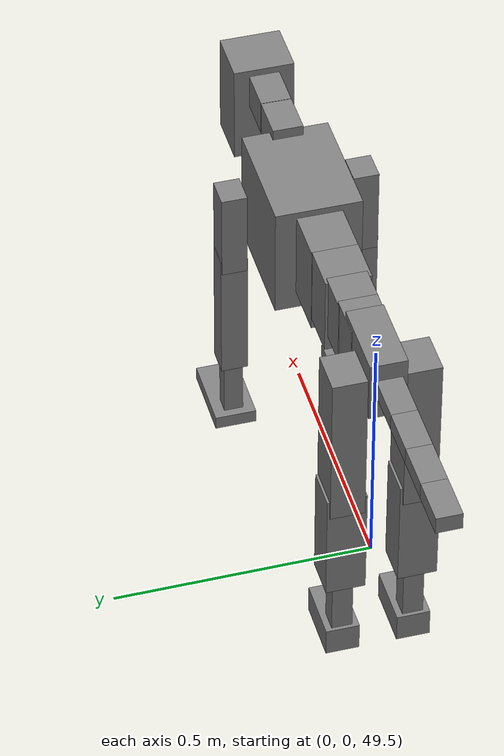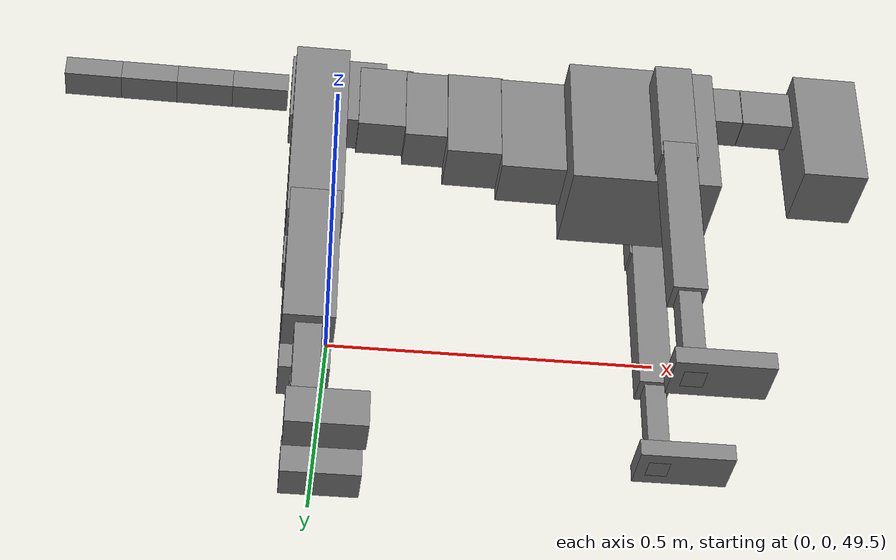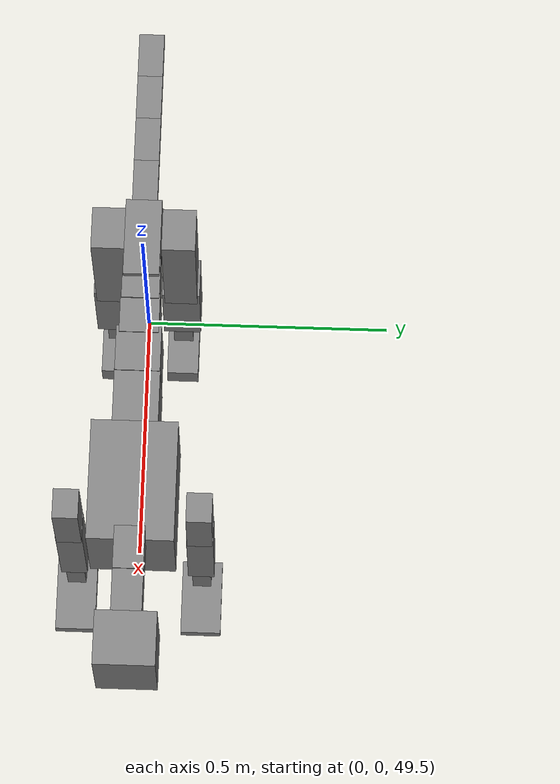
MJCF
<mujoco model="dog">

    <default>
        <joint armature="0.02" stiffness="1" damping="0.2" limited="true"/>
        <geom condim="3" friction="1 0.05 0.05" margin="0.01"/>
        <motor ctrllimited="true" ctrlrange="-1.0 1.0" forcelimited="true" gear="50"/>
    </default>

    <compiler inertiafromgeom="true" angle="radian"/>

    <option timestep="0.016" iterations="50" tolerance="1e-10" solver="Newton" jacobian="dense" cone="pyramidal"/>

    <size nconmax="20000" njmax="60000" nstack="5000000"/>
    <visual>
        <map force="0.1" zfar="30"/>
        <rgba haze="0.15 0.25 0.35 1"/>
        <quality shadowsize="2048"/>
        <global offwidth="800" offheight="800"/>
    </visual>

    <asset>
        <texture type="skybox" builtin="gradient" rgb1="0.3 0.5 0.7" rgb2="0 0 0" width="512" height="512"/>
        <texture name="texplane" type="2d" builtin="checker" rgb1=".2 .3 .4" rgb2=".1 0.15 0.2" width="512" height="512"
                 mark="cross" markrgb=".8 .8 .8"/>
        <texture name="texgeom" type="cube" builtin="flat" mark="cross" width="127" height="1278" rgb1="0.8 0.6 0.4"
                 rgb2="0.8 0.6 0.4" markrgb="1 1 1" random="0.01"/>

        <material name="matplane" reflectance="0.3" texture="texplane" texrepeat="1 1" texuniform="true"/>
        <material name="matgeom" texture="texgeom" texuniform="true" rgba="0.8 0.6 .4 1"/>
    </asset>

    <worldbody>
        <geom name="floor" pos="0 0 0" size="0 0 .25" type="plane" material="matplane" condim="3"/>

        <light directional="false" diffuse=".2 .2 .2" specular="0 0 0" pos="0 0 5" dir="0 0 -1" castshadow="false"/>
        <light mode="targetbodycom" target="torso" directional="false" diffuse=".8 .8 .8" specular="0.3 0.3 0.3"
               pos="0 0 4.0" dir="0 0 -1"/>

        <body name="root" pos="0 0 50">
            <freejoint name="root_1"/>
            <geom type="box" pos="0 0 -0.02" size="0.0774  0.0358  0.063" density="2030"/>

            <body name="spine1" pos="0.054 0 0">
                <joint name="spine1_y" axis="0 1 0" range="0 0.7" limited="true"/>
                <geom type="box" pos="0.02375 0 -0.03" size="0.04375  0.0375  0.05985" density="2030"/>

                <body name="spine2" pos="0.0612 0 0">
                    <joint name="spine2_y" axis="0 1 0" range="-0.15 0.15" limited="true"/>
                    <geom type="box" pos="0.03555  0  -0.04" size="0.04055  0.039  0.06615" density="2030"/>

                    <body name="spine3" pos="0.0730 0 0">
                        <joint name="spine3_y" axis="0 1 0" range="-0.15 0.15" limited="true"/>
                        <geom type="box" pos="0.03555  0  -0.057" size="0.04555  0.0445  0.081" density="2030"/>

                        <body name="spine4" pos="0.0780 0 0">
                            <joint name="spine4_y" axis="0 1 0" range="-0.15 0.15" limited="true"/>
                            <geom type="box" pos="0.05265  0  -0.07" size="0.05265  0.045  0.09135" density="2030"/>

                            <body name="torso" pos="0.1082 0 0">
                                <joint name="torso_y" axis="0 1 0" range="-0.15 0.15" limited="true"/>
                                <geom type="box" pos="0.11925  0  -0.085" size="0.11925  0.085  0.11745"
                                      density="2030"/>

                                <body name="neck1" pos="0.2160  0   0.0180">
                                    <joint name="neck1_y" axis="0 1 0" range="-1.2  -1" limited="true"/>
                                    <geom type="box" pos="0.0423  0  0" size="0.0423  0.03  0.036" density="2325"/>

                                    <body name="neck2" pos="0.0853  0  0">
                                        <joint name="neck2_y" axis="0 1 0" range="0.1  0" limited="true"/>
                                        <geom type="box" pos="0.0423  0  0" size="0.0423  0.03  0.036" density="2325"/>

                                        <body name="head" pos="0.0853  0  0">
                                            <joint name="head_y" axis="0 1 0" range="-0.3  -0.2" limited="true"/>
                                            <geom type="box" pos="0.0531  0  -0.055" size="0.0531  0.06  0.1044"
                                                  density="4030"/>

                                        </body>
                                    </body>
                                </body>

                                <body name="front_shoulder" pos="0.156  0   -0.0480">
                                    <joint name="front_shoulder_y" axis="0 1 0" range="-1 1.5" limited="true"/>
                                    <geom type="box" pos="0 0.13 -0.0648" size="0.0296  0.0253  0.0915" density="1158"/>
                                    <geom type="box" pos="0 -0.13 -0.0648" size="0.0296  0.0253  0.0915"
                                          density="1158"/>

                                    <body name="front_elbow" pos="0  0  -0.1296">
                                        <joint name="front_elbow_y" axis="0 1 0" range="-2 0" limited="true"/>
                                        <geom type="box" pos="0 0.13 -0.1404" size="0.0261  0.0267  0.1404"
                                              density="1081"/>
                                        <geom type="box" pos="0 -0.13 -0.1404" size="0.0261  0.0267  0.1404"
                                              density="1081"/>

                                        <body name="front_wrist" pos="0  0  -0.2808">
                                            <joint name="front_wrist_y" axis="0 1 0" range="-0.2 0" limited="true"/>
                                            <geom type="box" pos="0 0.13 -0.0657" size="0.0171  0.0190  0.0788"
                                                  density="1664"/>
                                            <geom type="box" pos="0 -0.13 -0.0657" size="0.0171  0.0190  0.0788"
                                                  density="1664"/>

                                            <body name="front_finger_end" pos="0  0  -0.1314">
                                                <joint name="front_finger_y" axis="0 1 0" range="-0.4 1"
                                                       limited="true"/>
                                                <geom type="box" pos="0.0411  0.13  0.0011"
                                                      size="0.0753  0.0411  0.0139" density="1515"/>
                                                <geom type="box" pos="0.0411  -0.13  0.0011"
                                                      size="0.0753  0.0411  0.0139" density="1515"/>

                                            </body>

                                        </body>
                                    </body>
                                </body>

                            </body>
                        </body>
                    </body>
                </body>
            </body>

            <body name="back_hip" pos="-0.03 0 -0.018">
                <joint name="back_hip_y" axis="0 1 0" range="-1.5 0.3" limited="true"/>
                <geom type="box" pos="0 0.07 -0.1424" size="0.0426  0.0335  0.1652" density="1154"/>
                <geom type="box" pos="0 -0.07 -0.1424" size="0.0426  0.0335  0.1652" density="1154"/>

                <body name="back_knee" pos="0  0  -0.2848">
                    <joint name="back_knee_y" axis="0 1 0" range="0 2.8" limited="true"/>
                    <geom type="box" pos="0 0.07 -0.1021" size="0.0391  0.0385  0.1177" density="1227"/>
                    <geom type="box" pos="0 -0.07 -0.1021" size="0.0391  0.0385  0.1177" density="1227"/>

                    <body name="back_ankle" pos="0  0  -0.2043">
                        <joint name="back_ankle_y" axis="0 1 0" range="-2.2 0" limited="true"/>
                        <geom type="box" pos="0 0.07 -0.0749" size="0.0203  0.0203  0.0862" density="1284"/>
                        <geom type="box" pos="0 -0.07 -0.0749" size="0.0203  0.0203  0.0862" density="1284"/>

                        <body name="back_toe_end" pos="0  0  -0.1499">
                            <joint name="back_toe_y" axis="0 1 0" range="-0.4 1" limited="true"/>
                            <geom type="box" pos="0.0329  0.07  -0.0144" size="0.0604  0.0329  0.0294" density="1515"/>
                            <geom type="box" pos="0.0329  -0.07  -0.0144" size="0.0604  0.0329  0.0294" density="1515"/>

                        </body>
                    </body>
                </body>
            </body>

            <body name="tail1" pos="-0.074 0 -0.006">
                <joint name="tail1_y" axis="0 1 0" range="-0.2 0.2" limited="true"/>
                <geom type="box" pos="-0.0536  0  0" size="0.045  0.025  0.0175" density="1587"/>

                <body name="tail2" pos="-0.09 0 0">
                    <joint name="tail2_y" axis="0 1 0" range="-0.2 0.2" limited="true"/>
                    <geom type="box" pos="-0.0536  0  0" size="0.045  0.025  0.0175" density="1587"/>

                    <body name="tail3" pos="-0.09 0 0">
                        <joint name="tail3_y" axis="0 1 0" range="-0.2 0.2" limited="true"/>
                        <geom type="box" pos="-0.0536  0  0" size="0.045  0.025  0.0175" density="1587"/>

                        <body name="tail4" pos="-0.09 0 0">
                            <joint name="tail4_y" axis="0 1 0" range="-0.2 0.2" limited="true"/>
                            <geom type="box" pos="-0.0536  0  0" size="0.045  0.025  0.0175" density="1587"/>

                        </body>
                    </body>
                </body>
            </body>
        </body>
    </worldbody>

    <actuator>
        <motor joint="spine1_y" forcerange="-150 150     "/>
        <motor joint="spine2_y" forcerange="-150 150     "/>
        <motor joint="spine3_y" forcerange="-150 150     "/>
        <motor joint="spine4_y" forcerange="-150 150     "/>
        <motor joint="torso_y" forcerange="-150 150     "/>
        <motor joint="neck1_y" forcerange="-100 100       "/>
        <motor joint="neck2_y" forcerange="-100 100       "/>
        <motor joint="head_y" forcerange="-150 150       "/>
        <motor joint="front_shoulder_y" forcerange="-125.52 143.29"/>
        <motor joint="front_elbow_y" forcerange="-166.12 127.94"/>
        <motor joint="front_wrist_y" forcerange="-82.48 69.28"/>
        <motor joint="front_finger_y" forcerange="-99.78 79.16"/>
        <motor joint="back_hip_y" forcerange="-299.97 346.04"/>
        <motor joint="back_knee_y" forcerange="-370.57 389.94"/>
        <motor joint="back_angle_y" forcerange="-132.02 92.69"/>
        <motor joint="back_toe_y" forcerange="-128.23 55.24"/>
        <motor joint="tail1_y" forcerange="-50 50     "/>
        <motor joint="tail2_y" forcerange="-50 50     "/>
        <motor joint="tail3_y" forcerange="-50 50     "/>
        <motor joint="tail4_y" forcerange="-50 50     "/>
    </actuator>
</mujoco>
